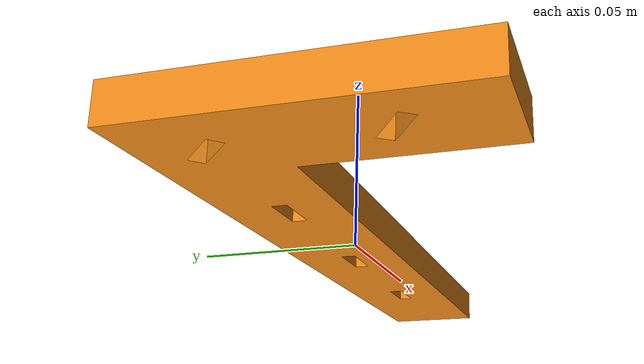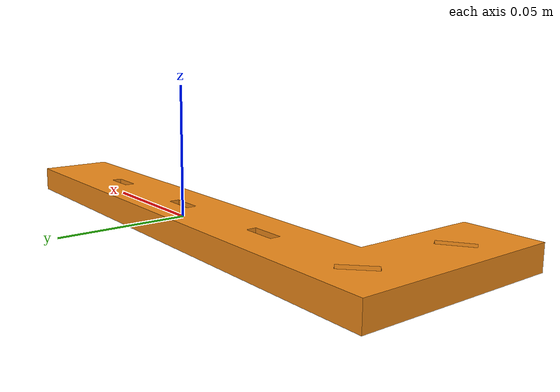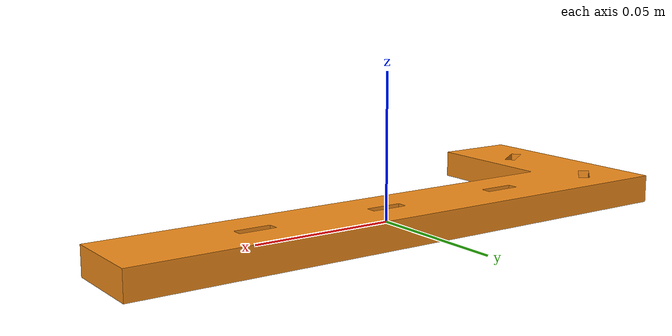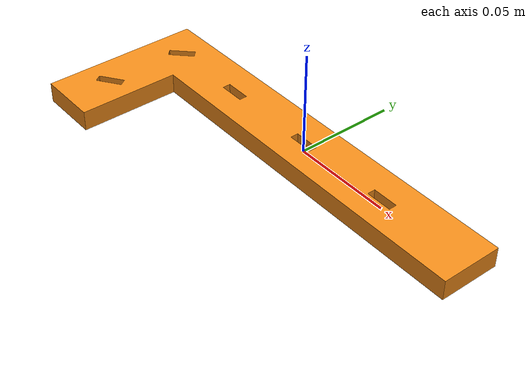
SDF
<?xml version="1.0"?>

<sdf version="1.5">
  <model name="bracket">
    <static>false</static>

    <link name="link0">
      <collision name="collision">
        <pose>0.000 0 0.000 0 0 0</pose>
        <geometry>
          <box>
            <size> 0.18 0.07 0.01</size>
          </box>
          <!-- OR -->
        </geometry>
        <surface>
          <friction>
            <ode>
              <mu>0.99</mu>
              <mu2>0.99</mu2>
            </ode>
          </friction>
        </surface>
      </collision>

      <visual name="visual">
        <geometry>
          <mesh>
            <uri>model://bracket/meshes/bracket_modified.dae</uri>
          </mesh>
        </geometry>
        <!-- OPTIONAL -->
        <material>
          <script>
            <uri>file://media/materials/scripts/gazebo.material</uri>
            <name>Gazebo/Orange</name>
          </script>
        </material>
      </visual>

      <inertial>
        <pose>0.0 0.0 0.0 0 0</pose>

        <mass>0.10</mass>
        <inertia>
            <ixx>0.0000417</ixx>
            <ixy>0.0</ixy>
            <ixz>0.0</ixz>
            <iyy>0.0002708</iyy>
            <iyz>0.0</iyz>
            <izz>0.0003108</izz>
        </inertia>
      </inertial>

    </link>

  </model>
</sdf>
